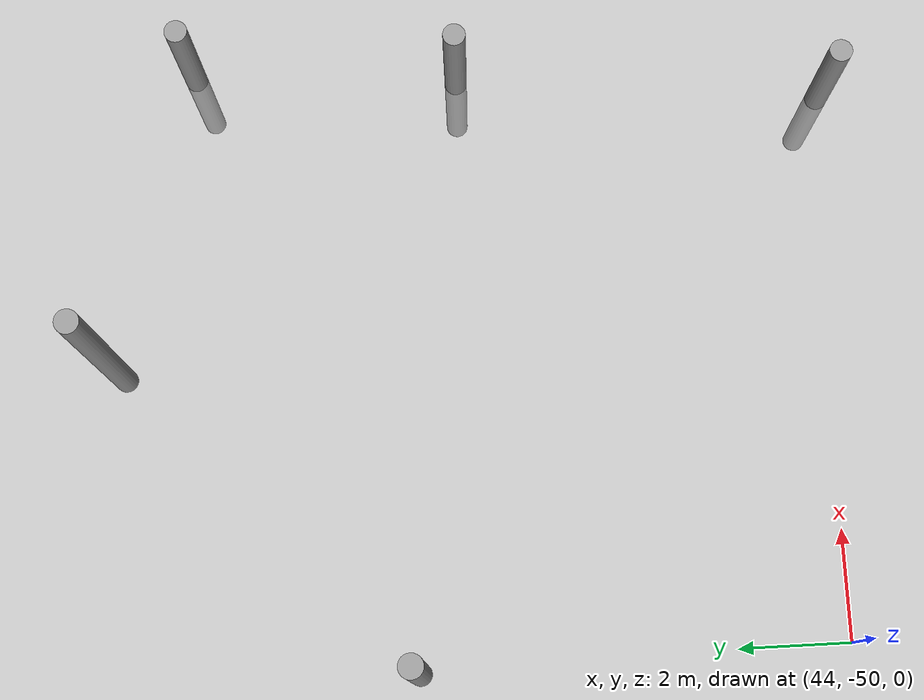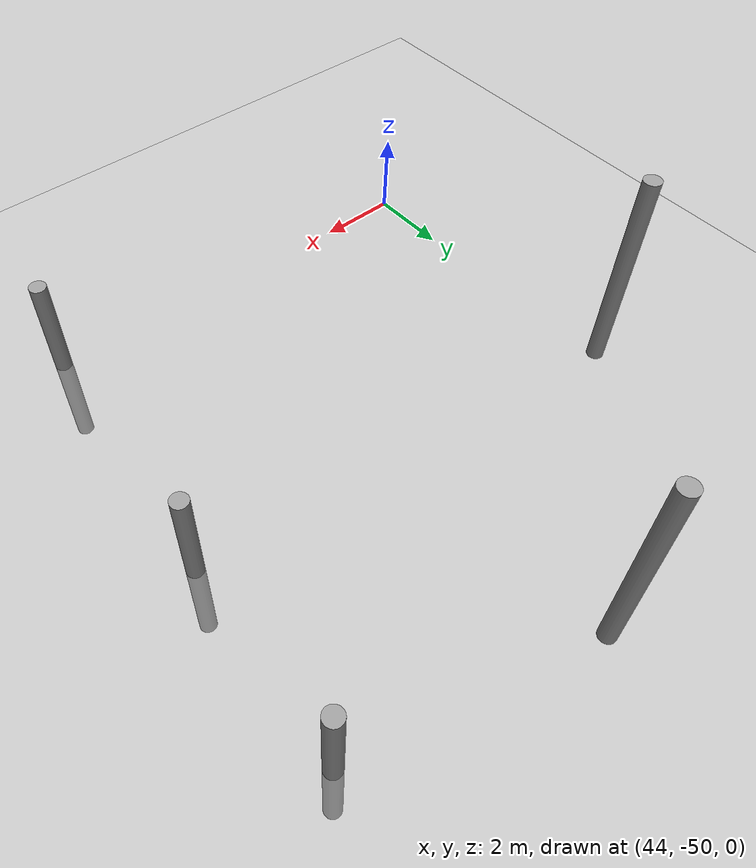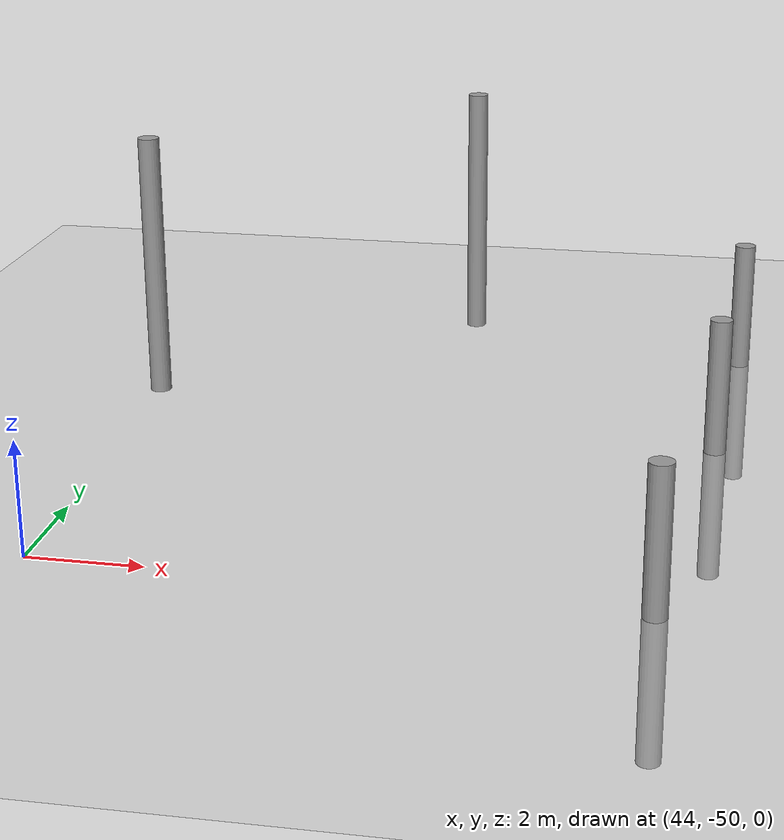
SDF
<sdf version="1.6">
 <world name="default">
  <model name="ground_plane">
   <static>1</static>
   <link name="link">
    <collision name="collision">
     <geometry><plane><normal>0 0 1</normal><size>100 100</size></plane></geometry>
     <surface><friction><ode><mu>100</mu><mu2>50</mu2></ode></friction></surface>
    </collision>
    <visual name="visual">
     <cast_shadows>0</cast_shadows>
     <geometry><plane><normal>0 0 1</normal><size>100 100</size></plane></geometry>
     <material>
      <script><uri>file://media/materials/scripts/gazebo.material</uri><name>Gazebo/Grey</name></script>
     </material>
    </visual>
   </link>
  </model>
  <model name="empty_pillars_9">
   <model name="empty_pillar_clone_34">
    <link name="link">
     <inertial>
      <mass>1</mass>
      <inertia><ixx>0.145833</ixx><ixy>0</ixy><ixz>0</ixz><iyy>0.145833</iyy><iyz>0</iyz><izz>0.125</izz></inertia>
     </inertial>
     <visual name="visual">
      <geometry><cylinder><radius>0.2</radius><length>5</length></cylinder></geometry>
      <material>
       <script><name>Gazebo/Grey</name><uri>file://media/materials/scripts/gazebo.material</uri></script>
       <shader type="vertex"><normal_map>__default__</normal_map></shader>
       <ambient>0.3 0.3 0.3 1</ambient>
       <diffuse>0.7 0.7 0.7 1</diffuse>
       <specular>0.01 0.01 0.01 1</specular>
       <emissive>0 0 0 1</emissive>
      </material>
     </visual>
     <collision name="collision">
      <geometry><cylinder><radius>0.05</radius><length>5</length></cylinder></geometry>
      <surface>
       <friction>
        <ode><mu>1</mu><mu2>1</mu2><fdir1>0 0 0</fdir1><slip1>0</slip1><slip2>0</slip2></ode>
        <torsional>
         <coefficient>1</coefficient>
         <patch_radius>0</patch_radius>
         <surface_radius>0</surface_radius>
         <use_patch_radius>1</use_patch_radius>
         <ode><slip>0</slip></ode>
        </torsional>
       </friction>
       <bounce><restitution_coefficient>0</restitution_coefficient><threshold>1e+06</threshold></bounce>
       <contact>
        <collide_without_contact>0</collide_without_contact>
        <collide_without_contact_bitmask>1</collide_without_contact_bitmask>
        <collide_bitmask>1</collide_bitmask>
        <ode>
         <soft_cfm>0</soft_cfm>
         <soft_erp>0.2</soft_erp>
         <kp>1e+13</kp>
         <kd>1</kd>
         <max_vel>0.01</max_vel>
         <min_depth>0</min_depth>
        </ode>
        <bullet>
         <split_impulse>1</split_impulse>
         <split_impulse_penetration_threshold>-0.01</split_impulse_penetration_threshold>
         <soft_cfm>0</soft_cfm>
         <soft_erp>0.2</soft_erp>
         <kp>1e+13</kp>
         <kd>1</kd>
        </bullet>
       </contact>
      </surface>
     </collision>
    </link>
    <static>0</static>
    <pose>19.0861 -20.8946 0 0 -0 0</pose>
   </model>
   <model name="empty_pillar_clone_54">
    <link name="link">
     <inertial>
      <mass>1</mass>
      <inertia><ixx>0.145833</ixx><ixy>0</ixy><ixz>0</ixz><iyy>0.145833</iyy><iyz>0</iyz><izz>0.125</izz></inertia>
     </inertial>
     <visual name="visual">
      <geometry><cylinder><radius>0.2</radius><length>5</length></cylinder></geometry>
      <material>
       <script><name>Gazebo/Grey</name><uri>file://media/materials/scripts/gazebo.material</uri></script>
       <shader type="vertex"><normal_map>__default__</normal_map></shader>
       <ambient>0.3 0.3 0.3 1</ambient>
       <diffuse>0.7 0.7 0.7 1</diffuse>
       <specular>0.01 0.01 0.01 1</specular>
       <emissive>0 0 0 1</emissive>
      </material>
     </visual>
     <collision name="collision">
      <geometry><cylinder><radius>0.05</radius><length>5</length></cylinder></geometry>
      <surface>
       <friction>
        <ode><mu>1</mu><mu2>1</mu2><fdir1>0 0 0</fdir1><slip1>0</slip1><slip2>0</slip2></ode>
        <torsional>
         <coefficient>1</coefficient>
         <patch_radius>0</patch_radius>
         <surface_radius>0</surface_radius>
         <use_patch_radius>1</use_patch_radius>
         <ode><slip>0</slip></ode>
        </torsional>
       </friction>
       <bounce><restitution_coefficient>0</restitution_coefficient><threshold>1e+06</threshold></bounce>
       <contact>
        <collide_without_contact>0</collide_without_contact>
        <collide_without_contact_bitmask>1</collide_without_contact_bitmask>
        <collide_bitmask>1</collide_bitmask>
        <ode>
         <soft_cfm>0</soft_cfm>
         <soft_erp>0.2</soft_erp>
         <kp>1e+13</kp>
         <kd>1</kd>
         <max_vel>0.01</max_vel>
         <min_depth>0</min_depth>
        </ode>
        <bullet>
         <split_impulse>1</split_impulse>
         <split_impulse_penetration_threshold>-0.01</split_impulse_penetration_threshold>
         <soft_cfm>0</soft_cfm>
         <soft_erp>0.2</soft_erp>
         <kp>1e+13</kp>
         <kd>1</kd>
        </bullet>
       </contact>
      </surface>
     </collision>
    </link>
    <static>0</static>
    <pose>24.557 -15.8784 0 0 -0 0</pose>
   </model>
   <static>0</static>
   <pose>24.7676 -21.5571 2.56943 0 -0 0</pose>
  </model>
  <model name="empty_pillars_10">
   <model name="empty_pillar_clone_35">
    <link name="link">
     <inertial>
      <mass>1</mass>
      <inertia><ixx>0.145833</ixx><ixy>0</ixy><ixz>0</ixz><iyy>0.145833</iyy><iyz>0</iyz><izz>0.125</izz></inertia>
     </inertial>
     <visual name="visual">
      <geometry><cylinder><radius>0.2</radius><length>5</length></cylinder></geometry>
      <material>
       <script><name>Gazebo/Grey</name><uri>file://media/materials/scripts/gazebo.material</uri></script>
       <shader type="vertex"><normal_map>__default__</normal_map></shader>
       <ambient>0.3 0.3 0.3 1</ambient>
       <diffuse>0.7 0.7 0.7 1</diffuse>
       <specular>0.01 0.01 0.01 1</specular>
       <emissive>0 0 0 1</emissive>
      </material>
     </visual>
     <collision name="collision">
      <geometry><cylinder><radius>0.05</radius><length>5</length></cylinder></geometry>
      <surface>
       <friction>
        <ode><mu>1</mu><mu2>1</mu2><fdir1>0 0 0</fdir1><slip1>0</slip1><slip2>0</slip2></ode>
        <torsional>
         <coefficient>1</coefficient>
         <patch_radius>0</patch_radius>
         <surface_radius>0</surface_radius>
         <use_patch_radius>1</use_patch_radius>
         <ode><slip>0</slip></ode>
        </torsional>
       </friction>
       <bounce><restitution_coefficient>0</restitution_coefficient><threshold>1e+06</threshold></bounce>
       <contact>
        <collide_without_contact>0</collide_without_contact>
        <collide_without_contact_bitmask>1</collide_without_contact_bitmask>
        <collide_bitmask>1</collide_bitmask>
        <ode>
         <soft_cfm>0</soft_cfm>
         <soft_erp>0.2</soft_erp>
         <kp>1e+13</kp>
         <kd>1</kd>
         <max_vel>0.01</max_vel>
         <min_depth>0</min_depth>
        </ode>
        <bullet>
         <split_impulse>1</split_impulse>
         <split_impulse_penetration_threshold>-0.01</split_impulse_penetration_threshold>
         <soft_cfm>0</soft_cfm>
         <soft_erp>0.2</soft_erp>
         <kp>1e+13</kp>
         <kd>1</kd>
        </bullet>
       </contact>
      </surface>
     </collision>
    </link>
    <static>0</static>
    <pose>-19.4431 -17.0281 0 0 -0 0</pose>
   </model>
   <model name="empty_pillar_clone_43">
    <link name="link">
     <inertial>
      <mass>1</mass>
      <inertia><ixx>0.145833</ixx><ixy>0</ixy><ixz>0</ixz><iyy>0.145833</iyy><iyz>0</iyz><izz>0.125</izz></inertia>
     </inertial>
     <visual name="visual">
      <geometry><cylinder><radius>0.2</radius><length>5</length></cylinder></geometry>
      <material>
       <script><name>Gazebo/Grey</name><uri>file://media/materials/scripts/gazebo.material</uri></script>
       <shader type="vertex"><normal_map>__default__</normal_map></shader>
       <ambient>0.3 0.3 0.3 1</ambient>
       <diffuse>0.7 0.7 0.7 1</diffuse>
       <specular>0.01 0.01 0.01 1</specular>
       <emissive>0 0 0 1</emissive>
      </material>
     </visual>
     <collision name="collision">
      <geometry><cylinder><radius>0.05</radius><length>5</length></cylinder></geometry>
      <surface>
       <friction>
        <ode><mu>1</mu><mu2>1</mu2><fdir1>0 0 0</fdir1><slip1>0</slip1><slip2>0</slip2></ode>
        <torsional>
         <coefficient>1</coefficient>
         <patch_radius>0</patch_radius>
         <surface_radius>0</surface_radius>
         <use_patch_radius>1</use_patch_radius>
         <ode><slip>0</slip></ode>
        </torsional>
       </friction>
       <bounce><restitution_coefficient>0</restitution_coefficient><threshold>1e+06</threshold></bounce>
       <contact>
        <collide_without_contact>0</collide_without_contact>
        <collide_without_contact_bitmask>1</collide_without_contact_bitmask>
        <collide_bitmask>1</collide_bitmask>
        <ode>
         <soft_cfm>0</soft_cfm>
         <soft_erp>0.2</soft_erp>
         <kp>1e+13</kp>
         <kd>1</kd>
         <max_vel>0.01</max_vel>
         <min_depth>0</min_depth>
        </ode>
        <bullet>
         <split_impulse>1</split_impulse>
         <split_impulse_penetration_threshold>-0.01</split_impulse_penetration_threshold>
         <soft_cfm>0</soft_cfm>
         <soft_erp>0.2</soft_erp>
         <kp>1e+13</kp>
         <kd>1</kd>
        </bullet>
       </contact>
      </surface>
     </collision>
    </link>
    <static>0</static>
    <pose>-19.7613 -21.8307 0 0 -0 0</pose>
   </model>
   <static>0</static>
   <pose>74.3997 -21.7718 0 0 -0 0</pose>
  </model>
  <model name="empty_pillars_13">
   <model name="empty_pillar_clone_21">
    <link name="link">
     <inertial>
      <mass>1</mass>
      <inertia><ixx>0.145833</ixx><ixy>0</ixy><ixz>0</ixz><iyy>0.145833</iyy><iyz>0</iyz><izz>0.125</izz></inertia>
     </inertial>
     <visual name="visual">
      <geometry><cylinder><radius>0.2</radius><length>5</length></cylinder></geometry>
      <material>
       <script><name>Gazebo/Grey</name><uri>file://media/materials/scripts/gazebo.material</uri></script>
       <shader type="vertex"><normal_map>__default__</normal_map></shader>
       <ambient>0.3 0.3 0.3 1</ambient>
       <diffuse>0.7 0.7 0.7 1</diffuse>
       <specular>0.01 0.01 0.01 1</specular>
       <emissive>0 0 0 1</emissive>
      </material>
     </visual>
     <collision name="collision">
      <geometry><cylinder><radius>0.05</radius><length>5</length></cylinder></geometry>
      <surface>
       <friction>
        <ode><mu>1</mu><mu2>1</mu2><fdir1>0 0 0</fdir1><slip1>0</slip1><slip2>0</slip2></ode>
        <torsional>
         <coefficient>1</coefficient>
         <patch_radius>0</patch_radius>
         <surface_radius>0</surface_radius>
         <use_patch_radius>1</use_patch_radius>
         <ode><slip>0</slip></ode>
        </torsional>
       </friction>
       <bounce><restitution_coefficient>0</restitution_coefficient><threshold>1e+06</threshold></bounce>
       <contact>
        <collide_without_contact>0</collide_without_contact>
        <collide_without_contact_bitmask>1</collide_without_contact_bitmask>
        <collide_bitmask>1</collide_bitmask>
        <ode>
         <soft_cfm>0</soft_cfm>
         <soft_erp>0.2</soft_erp>
         <kp>1e+13</kp>
         <kd>1</kd>
         <max_vel>0.01</max_vel>
         <min_depth>0</min_depth>
        </ode>
        <bullet>
         <split_impulse>1</split_impulse>
         <split_impulse_penetration_threshold>-0.01</split_impulse_penetration_threshold>
         <soft_cfm>0</soft_cfm>
         <soft_erp>0.2</soft_erp>
         <kp>1e+13</kp>
         <kd>1</kd>
        </bullet>
       </contact>
      </surface>
     </collision>
    </link>
    <static>0</static>
    <pose>-21.7273 19.7662 0 0 -0 0</pose>
   </model>
   <static>0</static>
   <pose>75.7217 -70.0226 0 0 -0 0</pose>
  </model>
 </world>
</sdf>
